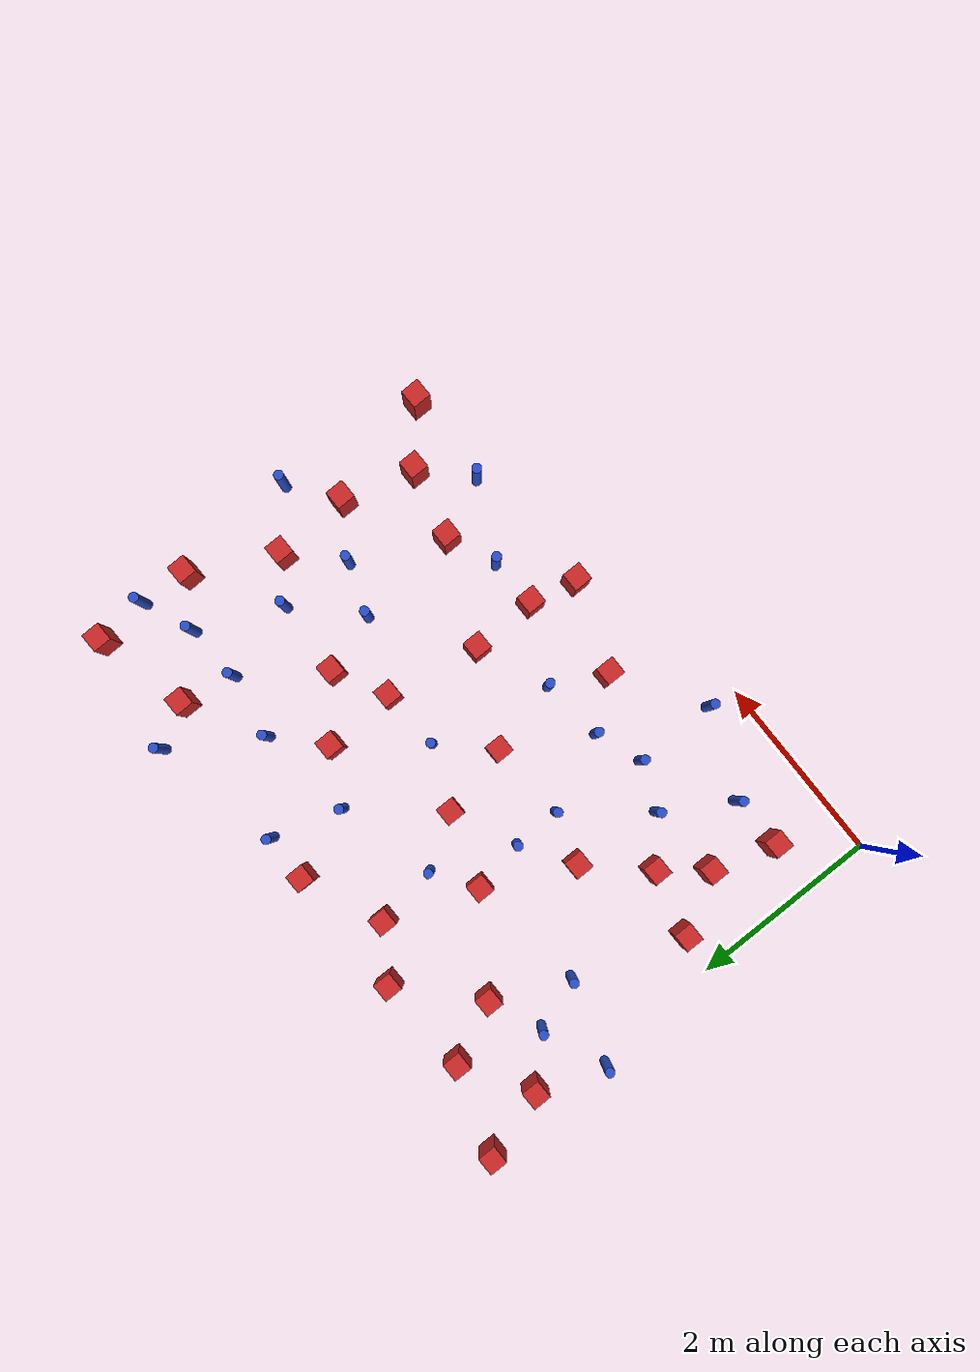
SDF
<sdf version="1.6">
 <model name="dense_24">
  <model name="square_post_obstacle5">
   <static>true</static>
   <pose>2.1114799383 3.23724180372 1.91545236811e-07 -7.35059704564e-06 1.12565212e-07 2.39332434364e-05</pose>
   <link name="link">
    <pose>0 0 0.25 0 -0 0</pose>
    <inertial>
     <mass>100</mass>
     <inertia>
      <ixx>0.166667</ixx>
      <ixy>0</ixy>
      <ixz>0</ixz>
      <iyy>0.166667</iyy>
      <iyz>0</iyz>
      <izz>0.166667</izz>
     </inertia>
    </inertial>
    <collision name="collision"><geometry><box><size>.2 .2 .5</size></box></geometry></collision>
    <visual name="visual">
     <geometry><box><size>.2 .2 .5</size></box></geometry>
     <material>
      <script><name>Gazebo/Red</name><uri>file://media/materials/scripts/gazebo.material</uri></script>
     </material>
    </visual>
   </link>
  </model>
  <model name="pole_obstacle13">
   <static>true</static>
   <pose>3.23759024392 1.45108022356 7.38925637345e-09 -8.471706928e-08 1.24976765152e-08 -1.74513093012e-07</pose>
   <link name="link">
    <pose>0 0 0.3 0 -0 0</pose>
    <inertial>
     <mass>1</mass>
     <inertia><ixx>0.145833</ixx><ixy>0</ixy><ixz>0</ixz><iyy>0.145833</iyy><iyz>0</iyz><izz>0.125</izz></inertia>
    </inertial>
    <collision name="collision">
     <geometry><cylinder><radius>0.05</radius><length>.6</length></cylinder></geometry>
    </collision>
    <visual name="visual">
     <geometry><cylinder><radius>0.05</radius><length>.6</length></cylinder></geometry>
     <material>
      <script><name>Gazebo/Blue</name><uri>file://media/materials/scripts/gazebo.material</uri></script>
     </material>
    </visual>
   </link>
  </model>
  <model name="square_post_obstacle26">
   <static>true</static>
   <pose>5.01945218155 1.30761017633 1.91545236811e-07 -7.35059704564e-06 1.12565212e-07 2.39332434364e-05</pose>
   <link name="link">
    <pose>0 0 0.25 0 -0 0</pose>
    <inertial>
     <mass>100</mass>
     <inertia>
      <ixx>0.166667</ixx>
      <ixy>0</ixy>
      <ixz>0</ixz>
      <iyy>0.166667</iyy>
      <iyz>0</iyz>
      <izz>0.166667</izz>
     </inertia>
    </inertial>
    <collision name="collision"><geometry><box><size>.2 .2 .5</size></box></geometry></collision>
    <visual name="visual">
     <geometry><box><size>.2 .2 .5</size></box></geometry>
     <material>
      <script><name>Gazebo/Red</name><uri>file://media/materials/scripts/gazebo.material</uri></script>
     </material>
    </visual>
   </link>
  </model>
  <model name="pole_obstacle21">
   <static>true</static>
   <pose>3.57852306725 3.81296826956 7.38925637345e-09 -8.47170692798e-08 1.24976764939e-08 -1.74513093025e-07</pose>
   <link name="link">
    <pose>0 0 0.3 0 -0 0</pose>
    <inertial>
     <mass>1</mass>
     <inertia><ixx>0.145833</ixx><ixy>0</ixy><ixz>0</ixz><iyy>0.145833</iyy><iyz>0</iyz><izz>0.125</izz></inertia>
    </inertial>
    <collision name="collision">
     <geometry><cylinder><radius>0.05</radius><length>.6</length></cylinder></geometry>
    </collision>
    <visual name="visual">
     <geometry><cylinder><radius>0.05</radius><length>.6</length></cylinder></geometry>
     <material>
      <script><name>Gazebo/Blue</name><uri>file://media/materials/scripts/gazebo.material</uri></script>
     </material>
    </visual>
   </link>
  </model>
  <model name="square_post_obstacle33">
   <static>true</static>
   <pose>6.36885371622 3.54152186159 1.91545236811e-07 -7.35059704564e-06 1.12565212e-07 2.39332434364e-05</pose>
   <link name="link">
    <pose>0 0 0.25 0 -0 0</pose>
    <inertial>
     <mass>100</mass>
     <inertia>
      <ixx>0.166667</ixx>
      <ixy>0</ixy>
      <ixz>0</ixz>
      <iyy>0.166667</iyy>
      <iyz>0</iyz>
      <izz>0.166667</izz>
     </inertia>
    </inertial>
    <collision name="collision"><geometry><box><size>.2 .2 .5</size></box></geometry></collision>
    <visual name="visual">
     <geometry><box><size>.2 .2 .5</size></box></geometry>
     <material>
      <script><name>Gazebo/Red</name><uri>file://media/materials/scripts/gazebo.material</uri></script>
     </material>
    </visual>
   </link>
  </model>
  <model name="pole_obstacle34">
   <static>true</static>
   <pose>4.60796828757 3.93987516932 7.38925637345e-09 -8.47170692798e-08 1.24976764937e-08 -1.74513093023e-07</pose>
   <link name="link">
    <pose>0 0 0.3 0 -0 0</pose>
    <inertial>
     <mass>1</mass>
     <inertia><ixx>0.145833</ixx><ixy>0</ixy><ixz>0</ixz><iyy>0.145833</iyy><iyz>0</iyz><izz>0.125</izz></inertia>
    </inertial>
    <collision name="collision">
     <geometry><cylinder><radius>0.05</radius><length>.6</length></cylinder></geometry>
    </collision>
    <visual name="visual">
     <geometry><cylinder><radius>0.05</radius><length>.6</length></cylinder></geometry>
     <material>
      <script><name>Gazebo/Blue</name><uri>file://media/materials/scripts/gazebo.material</uri></script>
     </material>
    </visual>
   </link>
  </model>
  <model name="pole_obstacle40">
   <static>true</static>
   <pose>5.30371421879 0.694664891359 7.38925637345e-09 -8.47170692799e-08 1.24976765038e-08 -1.74513093018e-07</pose>
   <link name="link">
    <pose>0 0 0.3 0 -0 0</pose>
    <inertial>
     <mass>1</mass>
     <inertia><ixx>0.145833</ixx><ixy>0</ixy><ixz>0</ixz><iyy>0.145833</iyy><iyz>0</iyz><izz>0.125</izz></inertia>
    </inertial>
    <collision name="collision">
     <geometry><cylinder><radius>0.05</radius><length>.6</length></cylinder></geometry>
    </collision>
    <visual name="visual">
     <geometry><cylinder><radius>0.05</radius><length>.6</length></cylinder></geometry>
     <material>
      <script><name>Gazebo/Blue</name><uri>file://media/materials/scripts/gazebo.material</uri></script>
     </material>
    </visual>
   </link>
  </model>
  <model name="square_post_obstacle41">
   <static>true</static>
   <pose>1.9316861947 4.54639131153 1.91545236811e-07 -7.35059704564e-06 1.12565212e-07 2.39332434364e-05</pose>
   <link name="link">
    <pose>0 0 0.25 0 -0 0</pose>
    <inertial>
     <mass>100</mass>
     <inertia>
      <ixx>0.166667</ixx>
      <ixy>0</ixy>
      <ixz>0</ixz>
      <iyy>0.166667</iyy>
      <iyz>0</iyz>
      <izz>0.166667</izz>
     </inertia>
    </inertial>
    <collision name="collision"><geometry><box><size>.2 .2 .5</size></box></geometry></collision>
    <visual name="visual">
     <geometry><box><size>.2 .2 .5</size></box></geometry>
     <material>
      <script><name>Gazebo/Red</name><uri>file://media/materials/scripts/gazebo.material</uri></script>
     </material>
    </visual>
   </link>
  </model>
  <model name="square_post_obstacle44">
   <static>true</static>
   <pose>3.0543779842 2.2329918 1.91545236811e-07 -7.35059704564e-06 1.12565212e-07 2.39332434364e-05</pose>
   <link name="link">
    <pose>0 0 0.25 0 -0 0</pose>
    <inertial>
     <mass>100</mass>
     <inertia>
      <ixx>0.166667</ixx>
      <ixy>0</ixy>
      <ixz>0</ixz>
      <iyy>0.166667</iyy>
      <iyz>0</iyz>
      <izz>0.166667</izz>
     </inertia>
    </inertial>
    <collision name="collision"><geometry><box><size>.2 .2 .5</size></box></geometry></collision>
    <visual name="visual">
     <geometry><box><size>.2 .2 .5</size></box></geometry>
     <material>
      <script><name>Gazebo/Red</name><uri>file://media/materials/scripts/gazebo.material</uri></script>
     </material>
    </visual>
   </link>
  </model>
  <model name="square_post_obstacle56">
   <static>true</static>
   <pose>3.97602311547 1.76277531821 1.91545236811e-07 -7.35059704564e-06 1.12565212e-07 2.39332434364e-05</pose>
   <link name="link">
    <pose>0 0 0.25 0 -0 0</pose>
    <inertial>
     <mass>100</mass>
     <inertia>
      <ixx>0.166667</ixx>
      <ixy>0</ixy>
      <ixz>0</ixz>
      <iyy>0.166667</iyy>
      <iyz>0</iyz>
      <izz>0.166667</izz>
     </inertia>
    </inertial>
    <collision name="collision"><geometry><box><size>.2 .2 .5</size></box></geometry></collision>
    <visual name="visual">
     <geometry><box><size>.2 .2 .5</size></box></geometry>
     <material>
      <script><name>Gazebo/Red</name><uri>file://media/materials/scripts/gazebo.material</uri></script>
     </material>
    </visual>
   </link>
  </model>
  <model name="square_post_obstacle58">
   <static>true</static>
   <pose>5.92137590437 2.68245180076 1.91545236811e-07 -7.35059704564e-06 1.12565212e-07 2.39332434364e-05</pose>
   <link name="link">
    <pose>0 0 0.25 0 -0 0</pose>
    <inertial>
     <mass>100</mass>
     <inertia>
      <ixx>0.166667</ixx>
      <ixy>0</ixy>
      <ixz>0</ixz>
      <iyy>0.166667</iyy>
      <iyz>0</iyz>
      <izz>0.166667</izz>
     </inertia>
    </inertial>
    <collision name="collision"><geometry><box><size>.2 .2 .5</size></box></geometry></collision>
    <visual name="visual">
     <geometry><box><size>.2 .2 .5</size></box></geometry>
     <material>
      <script><name>Gazebo/Red</name><uri>file://media/materials/scripts/gazebo.material</uri></script>
     </material>
    </visual>
   </link>
  </model>
  <model name="square_post_obstacle61">
   <static>true</static>
   <pose>5.73949888242 1.13760612837 1.91545236811e-07 -7.35059704564e-06 1.12565212e-07 2.39332434364e-05</pose>
   <link name="link">
    <pose>0 0 0.25 0 -0 0</pose>
    <inertial>
     <mass>100</mass>
     <inertia>
      <ixx>0.166667</ixx>
      <ixy>0</ixy>
      <ixz>0</ixz>
      <iyy>0.166667</iyy>
      <iyz>0</iyz>
      <izz>0.166667</izz>
     </inertia>
    </inertial>
    <collision name="collision"><geometry><box><size>.2 .2 .5</size></box></geometry></collision>
    <visual name="visual">
     <geometry><box><size>.2 .2 .5</size></box></geometry>
     <material>
      <script><name>Gazebo/Red</name><uri>file://media/materials/scripts/gazebo.material</uri></script>
     </material>
    </visual>
   </link>
  </model>
  <model name="square_post_obstacle64">
   <static>true</static>
   <pose>4.16203594431 2.74365635211 1.91545236811e-07 -7.35059704564e-06 1.12565212e-07 2.39332434364e-05</pose>
   <link name="link">
    <pose>0 0 0.25 0 -0 0</pose>
    <inertial>
     <mass>100</mass>
     <inertia>
      <ixx>0.166667</ixx>
      <ixy>0</ixy>
      <ixz>0</ixz>
      <iyy>0.166667</iyy>
      <iyz>0</iyz>
      <izz>0.166667</izz>
     </inertia>
    </inertial>
    <collision name="collision"><geometry><box><size>.2 .2 .5</size></box></geometry></collision>
    <visual name="visual">
     <geometry><box><size>.2 .2 .5</size></box></geometry>
     <material>
      <script><name>Gazebo/Red</name><uri>file://media/materials/scripts/gazebo.material</uri></script>
     </material>
    </visual>
   </link>
  </model>
  <model name="square_post_obstacle72">
   <static>true</static>
   <pose>1.19289978525 3.87084790823 1.91545236811e-07 -7.35059704564e-06 1.12565212e-07 2.39332434364e-05</pose>
   <link name="link">
    <pose>0 0 0.25 0 -0 0</pose>
    <inertial>
     <mass>100</mass>
     <inertia>
      <ixx>0.166667</ixx>
      <ixy>0</ixy>
      <ixz>0</ixz>
      <iyy>0.166667</iyy>
      <iyz>0</iyz>
      <izz>0.166667</izz>
     </inertia>
    </inertial>
    <collision name="collision"><geometry><box><size>.2 .2 .5</size></box></geometry></collision>
    <visual name="visual">
     <geometry><box><size>.2 .2 .5</size></box></geometry>
     <material>
      <script><name>Gazebo/Red</name><uri>file://media/materials/scripts/gazebo.material</uri></script>
     </material>
    </visual>
   </link>
  </model>
  <model name="pole_obstacle72">
   <static>true</static>
   <pose>5.28883919184 3.82008956437 7.38925637345e-09 -8.47170692798e-08 1.24976764937e-08 -1.74513093023e-07</pose>
   <link name="link">
    <pose>0 0 0.3 0 -0 0</pose>
    <inertial>
     <mass>1</mass>
     <inertia><ixx>0.145833</ixx><ixy>0</ixy><ixz>0</ixz><iyy>0.145833</iyy><iyz>0</iyz><izz>0.125</izz></inertia>
    </inertial>
    <collision name="collision">
     <geometry><cylinder><radius>0.05</radius><length>.6</length></cylinder></geometry>
    </collision>
    <visual name="visual">
     <geometry><cylinder><radius>0.05</radius><length>.6</length></cylinder></geometry>
     <material>
      <script><name>Gazebo/Blue</name><uri>file://media/materials/scripts/gazebo.material</uri></script>
     </material>
    </visual>
   </link>
  </model>
  <model name="pole_obstacle73">
   <static>true</static>
   <pose>2.2150391815 2.18027554898 7.38925637345e-09 -8.47170692798e-08 1.24976764939e-08 -1.74513093025e-07</pose>
   <link name="link">
    <pose>0 0 0.3 0 -0 0</pose>
    <inertial>
     <mass>1</mass>
     <inertia><ixx>0.145833</ixx><ixy>0</ixy><ixz>0</ixz><iyy>0.145833</iyy><iyz>0</iyz><izz>0.125</izz></inertia>
    </inertial>
    <collision name="collision">
     <geometry><cylinder><radius>0.05</radius><length>.6</length></cylinder></geometry>
    </collision>
    <visual name="visual">
     <geometry><cylinder><radius>0.05</radius><length>.6</length></cylinder></geometry>
     <material>
      <script><name>Gazebo/Blue</name><uri>file://media/materials/scripts/gazebo.material</uri></script>
     </material>
    </visual>
   </link>
  </model>
  <model name="pole_obstacle77">
   <static>true</static>
   <pose>5.5066604686 2.98591496148 7.38925637345e-09 -8.47170692798e-08 1.24976764937e-08 -1.74513093023e-07</pose>
   <link name="link">
    <pose>0 0 0.3 0 -0 0</pose>
    <inertial>
     <mass>1</mass>
     <inertia><ixx>0.145833</ixx><ixy>0</ixy><ixz>0</ixz><iyy>0.145833</iyy><iyz>0</iyz><izz>0.125</izz></inertia>
    </inertial>
    <collision name="collision">
     <geometry><cylinder><radius>0.05</radius><length>.6</length></cylinder></geometry>
    </collision>
    <visual name="visual">
     <geometry><cylinder><radius>0.05</radius><length>.6</length></cylinder></geometry>
     <material>
      <script><name>Gazebo/Blue</name><uri>file://media/materials/scripts/gazebo.material</uri></script>
     </material>
    </visual>
   </link>
  </model>
  <model name="pole_obstacle84">
   <static>true</static>
   <pose>5.8953983592 3.85170807815 7.38925637345e-09 -8.47170692798e-08 1.24976764937e-08 -1.74513093023e-07</pose>
   <link name="link">
    <pose>0 0 0.3 0 -0 0</pose>
    <inertial>
     <mass>1</mass>
     <inertia><ixx>0.145833</ixx><ixy>0</ixy><ixz>0</ixz><iyy>0.145833</iyy><iyz>0</iyz><izz>0.125</izz></inertia>
    </inertial>
    <collision name="collision">
     <geometry><cylinder><radius>0.05</radius><length>.6</length></cylinder></geometry>
    </collision>
    <visual name="visual">
     <geometry><cylinder><radius>0.05</radius><length>.6</length></cylinder></geometry>
     <material>
      <script><name>Gazebo/Blue</name><uri>file://media/materials/scripts/gazebo.material</uri></script>
     </material>
    </visual>
   </link>
  </model>
  <model name="pole_obstacle98">
   <static>true</static>
   <pose>3.79694006744 4.54510872652 7.38925637345e-09 -8.47170692798e-08 1.24976765033e-08 -1.74513093019e-07</pose>
   <link name="link">
    <pose>0 0 0.3 0 -0 0</pose>
    <inertial>
     <mass>1</mass>
     <inertia><ixx>0.145833</ixx><ixy>0</ixy><ixz>0</ixz><iyy>0.145833</iyy><iyz>0</iyz><izz>0.125</izz></inertia>
    </inertial>
    <collision name="collision">
     <geometry><cylinder><radius>0.05</radius><length>.6</length></cylinder></geometry>
    </collision>
    <visual name="visual">
     <geometry><cylinder><radius>0.05</radius><length>.6</length></cylinder></geometry>
     <material>
      <script><name>Gazebo/Blue</name><uri>file://media/materials/scripts/gazebo.material</uri></script>
     </material>
    </visual>
   </link>
  </model>
  <model name="square_post_obstacle91">
   <static>true</static>
   <pose>3.99244737672 1.07233325912 1.91545236811e-07 -7.35059704564e-06 1.12565212e-07 2.39332434364e-05</pose>
   <link name="link">
    <pose>0 0 0.25 0 -0 0</pose>
    <inertial>
     <mass>100</mass>
     <inertia>
      <ixx>0.166667</ixx>
      <ixy>0</ixy>
      <ixz>0</ixz>
      <iyy>0.166667</iyy>
      <iyz>0</iyz>
      <izz>0.166667</izz>
     </inertia>
    </inertial>
    <collision name="collision"><geometry><box><size>.2 .2 .5</size></box></geometry></collision>
    <visual name="visual">
     <geometry><box><size>.2 .2 .5</size></box></geometry>
     <material>
      <script><name>Gazebo/Red</name><uri>file://media/materials/scripts/gazebo.material</uri></script>
     </material>
    </visual>
   </link>
  </model>
  <model name="pole_obstacle106">
   <static>true</static>
   <pose>4.51753531283 1.08375698569 7.38925637345e-09 -8.471706928e-08 1.24976765134e-08 -1.74513093015e-07</pose>
   <link name="link">
    <pose>0 0 0.3 0 -0 0</pose>
    <inertial>
     <mass>1</mass>
     <inertia><ixx>0.145833</ixx><ixy>0</ixy><ixz>0</ixz><iyy>0.145833</iyy><iyz>0</iyz><izz>0.125</izz></inertia>
    </inertial>
    <collision name="collision">
     <geometry><cylinder><radius>0.05</radius><length>.6</length></cylinder></geometry>
    </collision>
    <visual name="visual">
     <geometry><cylinder><radius>0.05</radius><length>.6</length></cylinder></geometry>
     <material>
      <script><name>Gazebo/Blue</name><uri>file://media/materials/scripts/gazebo.material</uri></script>
     </material>
    </visual>
   </link>
  </model>
  <model name="pole_obstacle107">
   <static>true</static>
   <pose>2.57090489926 1.3809511709 7.38925637345e-09 -8.471706928e-08 1.24976765152e-08 -1.74513093012e-07</pose>
   <link name="link">
    <pose>0 0 0.3 0 -0 0</pose>
    <inertial>
     <mass>1</mass>
     <inertia><ixx>0.145833</ixx><ixy>0</ixy><ixz>0</ixz><iyy>0.145833</iyy><iyz>0</iyz><izz>0.125</izz></inertia>
    </inertial>
    <collision name="collision">
     <geometry><cylinder><radius>0.05</radius><length>.6</length></cylinder></geometry>
    </collision>
    <visual name="visual">
     <geometry><cylinder><radius>0.05</radius><length>.6</length></cylinder></geometry>
     <material>
      <script><name>Gazebo/Blue</name><uri>file://media/materials/scripts/gazebo.material</uri></script>
     </material>
    </visual>
   </link>
  </model>
  <model name="pole_obstacle108">
   <static>true</static>
   <pose>0.626406512663 3.64642340075 7.38925637345e-09 -8.47170692799e-08 1.2497676509e-08 -1.74513093016e-07</pose>
   <link name="link">
    <pose>0 0 0.3 0 -0 0</pose>
    <inertial>
     <mass>1</mass>
     <inertia><ixx>0.145833</ixx><ixy>0</ixy><ixz>0</ixz><iyy>0.145833</iyy><iyz>0</iyz><izz>0.125</izz></inertia>
    </inertial>
    <collision name="collision">
     <geometry><cylinder><radius>0.05</radius><length>.6</length></cylinder></geometry>
    </collision>
    <visual name="visual">
     <geometry><cylinder><radius>0.05</radius><length>.6</length></cylinder></geometry>
     <material>
      <script><name>Gazebo/Blue</name><uri>file://media/materials/scripts/gazebo.material</uri></script>
     </material>
    </visual>
   </link>
  </model>
  <model name="pole_obstacle115">
   <static>true</static>
   <pose>2.07404274981 0.334553600403 7.38925637345e-09 -8.471706928e-08 1.24976765172e-08 -1.74513093013e-07</pose>
   <link name="link">
    <pose>0 0 0.3 0 -0 0</pose>
    <inertial>
     <mass>1</mass>
     <inertia><ixx>0.145833</ixx><ixy>0</ixy><ixz>0</ixz><iyy>0.145833</iyy><iyz>0</iyz><izz>0.125</izz></inertia>
    </inertial>
    <collision name="collision">
     <geometry><cylinder><radius>0.05</radius><length>.6</length></cylinder></geometry>
    </collision>
    <visual name="visual">
     <geometry><cylinder><radius>0.05</radius><length>.6</length></cylinder></geometry>
     <material>
      <script><name>Gazebo/Blue</name><uri>file://media/materials/scripts/gazebo.material</uri></script>
     </material>
    </visual>
   </link>
  </model>
  <model name="pole_obstacle117">
   <static>true</static>
   <pose>0.829466836973 3.10124996302 7.38925637345e-09 -8.47170692799e-08 1.2497676509e-08 -1.74513093016e-07</pose>
   <link name="link">
    <pose>0 0 0.3 0 -0 0</pose>
    <inertial>
     <mass>1</mass>
     <inertia><ixx>0.145833</ixx><ixy>0</ixy><ixz>0</ixz><iyy>0.145833</iyy><iyz>0</iyz><izz>0.125</izz></inertia>
    </inertial>
    <collision name="collision">
     <geometry><cylinder><radius>0.05</radius><length>.6</length></cylinder></geometry>
    </collision>
    <visual name="visual">
     <geometry><cylinder><radius>0.05</radius><length>.6</length></cylinder></geometry>
     <material>
      <script><name>Gazebo/Blue</name><uri>file://media/materials/scripts/gazebo.material</uri></script>
     </material>
    </visual>
   </link>
  </model>
  <model name="square_post_obstacle106">
   <static>true</static>
   <pose>-0.0300472141594 4.81381780339 1.91545236811e-07 -7.35059704564e-06 1.12565212e-07 2.39332434364e-05</pose>
   <link name="link">
    <pose>0 0 0.25 0 -0 0</pose>
    <inertial>
     <mass>100</mass>
     <inertia>
      <ixx>0.166667</ixx>
      <ixy>0</ixy>
      <ixz>0</ixz>
      <iyy>0.166667</iyy>
      <iyz>0</iyz>
      <izz>0.166667</izz>
     </inertia>
    </inertial>
    <collision name="collision"><geometry><box><size>.2 .2 .5</size></box></geometry></collision>
    <visual name="visual">
     <geometry><box><size>.2 .2 .5</size></box></geometry>
     <material>
      <script><name>Gazebo/Red</name><uri>file://media/materials/scripts/gazebo.material</uri></script>
     </material>
    </visual>
   </link>
  </model>
  <model name="pole_obstacle119">
   <static>true</static>
   <pose>6.4260833534 4.06566936149 7.38925637345e-09 -8.47170692796e-08 1.24976764786e-08 -1.74513093032e-07</pose>
   <link name="link">
    <pose>0 0 0.3 0 -0 0</pose>
    <inertial>
     <mass>1</mass>
     <inertia><ixx>0.145833</ixx><ixy>0</ixy><ixz>0</ixz><iyy>0.145833</iyy><iyz>0</iyz><izz>0.125</izz></inertia>
    </inertial>
    <collision name="collision">
     <geometry><cylinder><radius>0.05</radius><length>.6</length></cylinder></geometry>
    </collision>
    <visual name="visual">
     <geometry><cylinder><radius>0.05</radius><length>.6</length></cylinder></geometry>
     <material>
      <script><name>Gazebo/Blue</name><uri>file://media/materials/scripts/gazebo.material</uri></script>
     </material>
    </visual>
   </link>
  </model>
  <model name="square_post_obstacle108">
   <static>true</static>
   <pose>1.68257461443 2.34215414196 1.91545236811e-07 -7.35059704564e-06 1.12565212e-07 2.39332434364e-05</pose>
   <link name="link">
    <pose>0 0 0.25 0 -0 0</pose>
    <inertial>
     <mass>100</mass>
     <inertia>
      <ixx>0.166667</ixx>
      <ixy>0</ixy>
      <ixz>0</ixz>
      <iyy>0.166667</iyy>
      <iyz>0</iyz>
      <izz>0.166667</izz>
     </inertia>
    </inertial>
    <collision name="collision"><geometry><box><size>.2 .2 .5</size></box></geometry></collision>
    <visual name="visual">
     <geometry><box><size>.2 .2 .5</size></box></geometry>
     <material>
      <script><name>Gazebo/Red</name><uri>file://media/materials/scripts/gazebo.material</uri></script>
     </material>
    </visual>
   </link>
  </model>
  <model name="pole_obstacle125">
   <static>true</static>
   <pose>3.51871331285 2.71443841695 7.38925637345e-09 -8.47170692798e-08 1.24976764939e-08 -1.74513093025e-07</pose>
   <link name="link">
    <pose>0 0 0.3 0 -0 0</pose>
    <inertial>
     <mass>1</mass>
     <inertia><ixx>0.145833</ixx><ixy>0</ixy><ixz>0</ixz><iyy>0.145833</iyy><iyz>0</iyz><izz>0.125</izz></inertia>
    </inertial>
    <collision name="collision">
     <geometry><cylinder><radius>0.05</radius><length>.6</length></cylinder></geometry>
    </collision>
    <visual name="visual">
     <geometry><cylinder><radius>0.05</radius><length>.6</length></cylinder></geometry>
     <material>
      <script><name>Gazebo/Blue</name><uri>file://media/materials/scripts/gazebo.material</uri></script>
     </material>
    </visual>
   </link>
  </model>
  <model name="square_post_obstacle115">
   <static>true</static>
   <pose>0.455635321716 1.95280933505 1.91545236811e-07 -7.35059704564e-06 1.12565212e-07 2.39332434364e-05</pose>
   <link name="link">
    <pose>0 0 0.25 0 -0 0</pose>
    <inertial>
     <mass>100</mass>
     <inertia>
      <ixx>0.166667</ixx>
      <ixy>0</ixy>
      <ixz>0</ixz>
      <iyy>0.166667</iyy>
      <iyz>0</iyz>
      <izz>0.166667</izz>
     </inertia>
    </inertial>
    <collision name="collision"><geometry><box><size>.2 .2 .5</size></box></geometry></collision>
    <visual name="visual">
     <geometry><box><size>.2 .2 .5</size></box></geometry>
     <material>
      <script><name>Gazebo/Red</name><uri>file://media/materials/scripts/gazebo.material</uri></script>
     </material>
    </visual>
   </link>
  </model>
  <model name="square_post_obstacle117">
   <static>true</static>
   <pose>1.15084973635 1.78178041295 1.91545236811e-07 -7.35059704564e-06 1.12565212e-07 2.39332434364e-05</pose>
   <link name="link">
    <pose>0 0 0.25 0 -0 0</pose>
    <inertial>
     <mass>100</mass>
     <inertia>
      <ixx>0.166667</ixx>
      <ixy>0</ixy>
      <ixz>0</ixz>
      <iyy>0.166667</iyy>
      <iyz>0</iyz>
      <izz>0.166667</izz>
     </inertia>
    </inertial>
    <collision name="collision"><geometry><box><size>.2 .2 .5</size></box></geometry></collision>
    <visual name="visual">
     <geometry><box><size>.2 .2 .5</size></box></geometry>
     <material>
      <script><name>Gazebo/Red</name><uri>file://media/materials/scripts/gazebo.material</uri></script>
     </material>
    </visual>
   </link>
  </model>
  <model name="square_post_obstacle119">
   <static>true</static>
   <pose>6.26309046809 0.683885494542 1.91545236811e-07 -7.35059704564e-06 1.12565212e-07 2.39332434364e-05</pose>
   <link name="link">
    <pose>0 0 0.25 0 -0 0</pose>
    <inertial>
     <mass>100</mass>
     <inertia>
      <ixx>0.166667</ixx>
      <ixy>0</ixy>
      <ixz>0</ixz>
      <iyy>0.166667</iyy>
      <iyz>0</iyz>
      <izz>0.166667</izz>
     </inertia>
    </inertial>
    <collision name="collision"><geometry><box><size>.2 .2 .5</size></box></geometry></collision>
    <visual name="visual">
     <geometry><box><size>.2 .2 .5</size></box></geometry>
     <material>
      <script><name>Gazebo/Red</name><uri>file://media/materials/scripts/gazebo.material</uri></script>
     </material>
    </visual>
   </link>
  </model>
  <model name="square_post_obstacle138">
   <static>true</static>
   <pose>5.38997732978 4.37417145799 1.91545236811e-07 -7.35059704564e-06 1.12565212e-07 2.39332434364e-05</pose>
   <link name="link">
    <pose>0 0 0.25 0 -0 0</pose>
    <inertial>
     <mass>100</mass>
     <inertia>
      <ixx>0.166667</ixx>
      <ixy>0</ixy>
      <ixz>0</ixz>
      <iyy>0.166667</iyy>
      <iyz>0</iyz>
      <izz>0.166667</izz>
     </inertia>
    </inertial>
    <collision name="collision"><geometry><box><size>.2 .2 .5</size></box></geometry></collision>
    <visual name="visual">
     <geometry><box><size>.2 .2 .5</size></box></geometry>
     <material>
      <script><name>Gazebo/Red</name><uri>file://media/materials/scripts/gazebo.material</uri></script>
     </material>
    </visual>
   </link>
  </model>
  <model name="pole_obstacle150">
   <static>true</static>
   <pose>5.17111351861 4.83644780608 7.38925637345e-09 -8.47170692796e-08 1.24976764786e-08 -1.74513093032e-07</pose>
   <link name="link">
    <pose>0 0 0.3 0 -0 0</pose>
    <inertial>
     <mass>1</mass>
     <inertia><ixx>0.145833</ixx><ixy>0</ixy><ixz>0</ixz><iyy>0.145833</iyy><iyz>0</iyz><izz>0.125</izz></inertia>
    </inertial>
    <collision name="collision">
     <geometry><cylinder><radius>0.05</radius><length>.6</length></cylinder></geometry>
    </collision>
    <visual name="visual">
     <geometry><cylinder><radius>0.05</radius><length>.6</length></cylinder></geometry>
     <material>
      <script><name>Gazebo/Blue</name><uri>file://media/materials/scripts/gazebo.material</uri></script>
     </material>
    </visual>
   </link>
  </model>
  <model name="square_post_obstacle141">
   <static>true</static>
   <pose>2.96178868603 0.909391289488 1.91545236811e-07 -7.35059704564e-06 1.12565212e-07 2.39332434364e-05</pose>
   <link name="link">
    <pose>0 0 0.25 0 -0 0</pose>
    <inertial>
     <mass>100</mass>
     <inertia>
      <ixx>0.166667</ixx>
      <ixy>0</ixy>
      <ixz>0</ixz>
      <iyy>0.166667</iyy>
      <iyz>0</iyz>
      <izz>0.166667</izz>
     </inertia>
    </inertial>
    <collision name="collision"><geometry><box><size>.2 .2 .5</size></box></geometry></collision>
    <visual name="visual">
     <geometry><box><size>.2 .2 .5</size></box></geometry>
     <material>
      <script><name>Gazebo/Red</name><uri>file://media/materials/scripts/gazebo.material</uri></script>
     </material>
    </visual>
   </link>
  </model>
  <model name="pole_obstacle158">
   <static>true</static>
   <pose>6.46131106012 2.22980184369 7.38925637345e-09 -8.47170692798e-08 1.24976764937e-08 -1.74513093023e-07</pose>
   <link name="link">
    <pose>0 0 0.3 0 -0 0</pose>
    <inertial>
     <mass>1</mass>
     <inertia><ixx>0.145833</ixx><ixy>0</ixy><ixz>0</ixz><iyy>0.145833</iyy><iyz>0</iyz><izz>0.125</izz></inertia>
    </inertial>
    <collision name="collision">
     <geometry><cylinder><radius>0.05</radius><length>.6</length></cylinder></geometry>
    </collision>
    <visual name="visual">
     <geometry><cylinder><radius>0.05</radius><length>.6</length></cylinder></geometry>
     <material>
      <script><name>Gazebo/Blue</name><uri>file://media/materials/scripts/gazebo.material</uri></script>
     </material>
    </visual>
   </link>
  </model>
  <model name="square_post_obstacle152">
   <static>true</static>
   <pose>2.88037979498 2.98938264803 1.91545236811e-07 -7.35059704564e-06 1.12565212e-07 2.39332434364e-05</pose>
   <link name="link">
    <pose>0 0 0.25 0 -0 0</pose>
    <inertial>
     <mass>100</mass>
     <inertia>
      <ixx>0.166667</ixx>
      <ixy>0</ixy>
      <ixz>0</ixz>
      <iyy>0.166667</iyy>
      <iyz>0</iyz>
      <izz>0.166667</izz>
     </inertia>
    </inertial>
    <collision name="collision"><geometry><box><size>.2 .2 .5</size></box></geometry></collision>
    <visual name="visual">
     <geometry><box><size>.2 .2 .5</size></box></geometry>
     <material>
      <script><name>Gazebo/Red</name><uri>file://media/materials/scripts/gazebo.material</uri></script>
     </material>
    </visual>
   </link>
  </model>
  <model name="pole_obstacle160">
   <static>true</static>
   <pose>1.1661735004 0.712990918538 7.38925637345e-09 -8.47170692799e-08 1.24976765075e-08 -1.74513093017e-07</pose>
   <link name="link">
    <pose>0 0 0.3 0 -0 0</pose>
    <inertial>
     <mass>1</mass>
     <inertia><ixx>0.145833</ixx><ixy>0</ixy><ixz>0</ixz><iyy>0.145833</iyy><iyz>0</iyz><izz>0.125</izz></inertia>
    </inertial>
    <collision name="collision">
     <geometry><cylinder><radius>0.05</radius><length>.6</length></cylinder></geometry>
    </collision>
    <visual name="visual">
     <geometry><cylinder><radius>0.05</radius><length>.6</length></cylinder></geometry>
     <material>
      <script><name>Gazebo/Blue</name><uri>file://media/materials/scripts/gazebo.material</uri></script>
     </material>
    </visual>
   </link>
  </model>
  <model name="pole_obstacle161">
   <static>true</static>
   <pose>2.54736153965 3.53073792887 7.38925637345e-09 -8.47170692798e-08 1.24976764939e-08 -1.74513093025e-07</pose>
   <link name="link">
    <pose>0 0 0.3 0 -0 0</pose>
    <inertial>
     <mass>1</mass>
     <inertia><ixx>0.145833</ixx><ixy>0</ixy><ixz>0</ixz><iyy>0.145833</iyy><iyz>0</iyz><izz>0.125</izz></inertia>
    </inertial>
    <collision name="collision">
     <geometry><cylinder><radius>0.05</radius><length>.6</length></cylinder></geometry>
    </collision>
    <visual name="visual">
     <geometry><cylinder><radius>0.05</radius><length>.6</length></cylinder></geometry>
     <material>
      <script><name>Gazebo/Blue</name><uri>file://media/materials/scripts/gazebo.material</uri></script>
     </material>
    </visual>
   </link>
  </model>
  <model name="square_post_obstacle154">
   <static>true</static>
   <pose>4.13322176871 3.50057650504 1.91545236811e-07 -7.35059704564e-06 1.12565212e-07 2.39332434364e-05</pose>
   <link name="link">
    <pose>0 0 0.25 0 -0 0</pose>
    <inertial>
     <mass>100</mass>
     <inertia>
      <ixx>0.166667</ixx>
      <ixy>0</ixy>
      <ixz>0</ixz>
      <iyy>0.166667</iyy>
      <iyz>0</iyz>
      <izz>0.166667</izz>
     </inertia>
    </inertial>
    <collision name="collision"><geometry><box><size>.2 .2 .5</size></box></geometry></collision>
    <visual name="visual">
     <geometry><box><size>.2 .2 .5</size></box></geometry>
     <material>
      <script><name>Gazebo/Red</name><uri>file://media/materials/scripts/gazebo.material</uri></script>
     </material>
    </visual>
   </link>
  </model>
  <model name="square_post_obstacle157">
   <static>true</static>
   <pose>0.609343886551 0.694963784463 1.91545236811e-07 -7.35059704564e-06 1.12565212e-07 2.39332434364e-05</pose>
   <link name="link">
    <pose>0 0 0.25 0 -0 0</pose>
    <inertial>
     <mass>100</mass>
     <inertia>
      <ixx>0.166667</ixx>
      <ixy>0</ixy>
      <ixz>0</ixz>
      <iyy>0.166667</iyy>
      <iyz>0</iyz>
      <izz>0.166667</izz>
     </inertia>
    </inertial>
    <collision name="collision"><geometry><box><size>.2 .2 .5</size></box></geometry></collision>
    <visual name="visual">
     <geometry><box><size>.2 .2 .5</size></box></geometry>
     <material>
      <script><name>Gazebo/Red</name><uri>file://media/materials/scripts/gazebo.material</uri></script>
     </material>
    </visual>
   </link>
  </model>
  <model name="square_post_obstacle159">
   <static>true</static>
   <pose>3.88069820759 0.583247028452 1.91545236811e-07 -7.35059704564e-06 1.12565212e-07 2.39332434364e-05</pose>
   <link name="link">
    <pose>0 0 0.25 0 -0 0</pose>
    <inertial>
     <mass>100</mass>
     <inertia>
      <ixx>0.166667</ixx>
      <ixy>0</ixy>
      <ixz>0</ixz>
      <iyy>0.166667</iyy>
      <iyz>0</iyz>
      <izz>0.166667</izz>
     </inertia>
    </inertial>
    <collision name="collision"><geometry><box><size>.2 .2 .5</size></box></geometry></collision>
    <visual name="visual">
     <geometry><box><size>.2 .2 .5</size></box></geometry>
     <material>
      <script><name>Gazebo/Red</name><uri>file://media/materials/scripts/gazebo.material</uri></script>
     </material>
    </visual>
   </link>
  </model>
  <model name="pole_obstacle171">
   <static>true</static>
   <pose>1.58293455189 1.40165752624 7.38925637345e-09 -8.471706928e-08 1.24976765079e-08 -1.74513093017e-07</pose>
   <link name="link">
    <pose>0 0 0.3 0 -0 0</pose>
    <inertial>
     <mass>1</mass>
     <inertia><ixx>0.145833</ixx><ixy>0</ixy><ixz>0</ixz><iyy>0.145833</iyy><iyz>0</iyz><izz>0.125</izz></inertia>
    </inertial>
    <collision name="collision">
     <geometry><cylinder><radius>0.05</radius><length>.6</length></cylinder></geometry>
    </collision>
    <visual name="visual">
     <geometry><cylinder><radius>0.05</radius><length>.6</length></cylinder></geometry>
     <material>
      <script><name>Gazebo/Blue</name><uri>file://media/materials/scripts/gazebo.material</uri></script>
     </material>
    </visual>
   </link>
  </model>
  <model name="square_post_obstacle177">
   <static>true</static>
   <pose>5.96098492398 1.87808114242 1.91545236811e-07 -7.35059704564e-06 1.12565212e-07 2.39332434364e-05</pose>
   <link name="link">
    <pose>0 0 0.25 0 -0 0</pose>
    <inertial>
     <mass>100</mass>
     <inertia>
      <ixx>0.166667</ixx>
      <ixy>0</ixy>
      <ixz>0</ixz>
      <iyy>0.166667</iyy>
      <iyz>0</iyz>
      <izz>0.166667</izz>
     </inertia>
    </inertial>
    <collision name="collision"><geometry><box><size>.2 .2 .5</size></box></geometry></collision>
    <visual name="visual">
     <geometry><box><size>.2 .2 .5</size></box></geometry>
     <material>
      <script><name>Gazebo/Red</name><uri>file://media/materials/scripts/gazebo.material</uri></script>
     </material>
    </visual>
   </link>
  </model>
  <model name="square_post_obstacle181">
   <static>true</static>
   <pose>2.45645565359 4.18837654641 1.91545236811e-07 -7.35059704564e-06 1.12565212e-07 2.39332434364e-05</pose>
   <link name="link">
    <pose>0 0 0.25 0 -0 0</pose>
    <inertial>
     <mass>100</mass>
     <inertia>
      <ixx>0.166667</ixx>
      <ixy>0</ixy>
      <ixz>0</ixz>
      <iyy>0.166667</iyy>
      <iyz>0</iyz>
      <izz>0.166667</izz>
     </inertia>
    </inertial>
    <collision name="collision"><geometry><box><size>.2 .2 .5</size></box></geometry></collision>
    <visual name="visual">
     <geometry><box><size>.2 .2 .5</size></box></geometry>
     <material>
      <script><name>Gazebo/Red</name><uri>file://media/materials/scripts/gazebo.material</uri></script>
     </material>
    </visual>
   </link>
  </model>
  <model name="square_post_obstacle184">
   <static>true</static>
   <pose>0.804920762274 1.35164518247 1.91545236811e-07 -7.35059704564e-06 1.12565212e-07 2.39332434364e-05</pose>
   <link name="link">
    <pose>0 0 0.25 0 -0 0</pose>
    <inertial>
     <mass>100</mass>
     <inertia>
      <ixx>0.166667</ixx>
      <ixy>0</ixy>
      <ixz>0</ixz>
      <iyy>0.166667</iyy>
      <iyz>0</iyz>
      <izz>0.166667</izz>
     </inertia>
    </inertial>
    <collision name="collision"><geometry><box><size>.2 .2 .5</size></box></geometry></collision>
    <visual name="visual">
     <geometry><box><size>.2 .2 .5</size></box></geometry>
     <material>
      <script><name>Gazebo/Red</name><uri>file://media/materials/scripts/gazebo.material</uri></script>
     </material>
    </visual>
   </link>
  </model>
  <model name="pole_obstacle190">
   <static>true</static>
   <pose>-0.0604125966969 3.37651074943 7.38925637345e-09 -8.47170692793e-08 1.24976764354e-08 -1.74513093044e-07</pose>
   <link name="link">
    <pose>0 0 0.3 0 -0 0</pose>
    <inertial>
     <mass>1</mass>
     <inertia><ixx>0.145833</ixx><ixy>0</ixy><ixz>0</ixz><iyy>0.145833</iyy><iyz>0</iyz><izz>0.125</izz></inertia>
    </inertial>
    <collision name="collision">
     <geometry><cylinder><radius>0.05</radius><length>.6</length></cylinder></geometry>
    </collision>
    <visual name="visual">
     <geometry><cylinder><radius>0.05</radius><length>.6</length></cylinder></geometry>
     <material>
      <script><name>Gazebo/Blue</name><uri>file://media/materials/scripts/gazebo.material</uri></script>
     </material>
    </visual>
   </link>
  </model>
  <model name="pole_obstacle193">
   <static>true</static>
   <pose>5.44827505243 2.21811820803 7.38925637345e-09 -8.47170692798e-08 1.24976764937e-08 -1.74513093023e-07</pose>
   <link name="link">
    <pose>0 0 0.3 0 -0 0</pose>
    <inertial>
     <mass>1</mass>
     <inertia><ixx>0.145833</ixx><ixy>0</ixy><ixz>0</ixz><iyy>0.145833</iyy><iyz>0</iyz><izz>0.125</izz></inertia>
    </inertial>
    <collision name="collision">
     <geometry><cylinder><radius>0.05</radius><length>.6</length></cylinder></geometry>
    </collision>
    <visual name="visual">
     <geometry><cylinder><radius>0.05</radius><length>.6</length></cylinder></geometry>
     <material>
      <script><name>Gazebo/Blue</name><uri>file://media/materials/scripts/gazebo.material</uri></script>
     </material>
    </visual>
   </link>
  </model>
  <model name="pole_obstacle205">
   <static>true</static>
   <pose>4.91408374949 2.41124155223 7.38925637345e-09 -8.47170692798e-08 1.24976764937e-08 -1.74513093023e-07</pose>
   <link name="link">
    <pose>0 0 0.3 0 -0 0</pose>
    <inertial>
     <mass>1</mass>
     <inertia><ixx>0.145833</ixx><ixy>0</ixy><ixz>0</ixz><iyy>0.145833</iyy><iyz>0</iyz><izz>0.125</izz></inertia>
    </inertial>
    <collision name="collision">
     <geometry><cylinder><radius>0.05</radius><length>.6</length></cylinder></geometry>
    </collision>
    <visual name="visual">
     <geometry><cylinder><radius>0.05</radius><length>.6</length></cylinder></geometry>
     <material>
      <script><name>Gazebo/Blue</name><uri>file://media/materials/scripts/gazebo.material</uri></script>
     </material>
    </visual>
   </link>
  </model>
  <model name="pole_obstacle208">
   <static>true</static>
   <pose>2.20457357284 2.68653578301 7.38925637345e-09 -8.47170692798e-08 1.24976764939e-08 -1.74513093025e-07</pose>
   <link name="link">
    <pose>0 0 0.3 0 -0 0</pose>
    <inertial>
     <mass>1</mass>
     <inertia><ixx>0.145833</ixx><ixy>0</ixy><ixz>0</ixz><iyy>0.145833</iyy><iyz>0</iyz><izz>0.125</izz></inertia>
    </inertial>
    <collision name="collision">
     <geometry><cylinder><radius>0.05</radius><length>.6</length></cylinder></geometry>
    </collision>
    <visual name="visual">
     <geometry><cylinder><radius>0.05</radius><length>.6</length></cylinder></geometry>
     <material>
      <script><name>Gazebo/Blue</name><uri>file://media/materials/scripts/gazebo.material</uri></script>
     </material>
    </visual>
   </link>
  </model>
  <model name="pole_obstacle210">
   <static>true</static>
   <pose>2.07956312528 1.20158763491 7.38925637345e-09 -8.471706928e-08 1.24976765152e-08 -1.74513093012e-07</pose>
   <link name="link">
    <pose>0 0 0.3 0 -0 0</pose>
    <inertial>
     <mass>1</mass>
     <inertia><ixx>0.145833</ixx><ixy>0</ixy><ixz>0</ixz><iyy>0.145833</iyy><iyz>0</iyz><izz>0.125</izz></inertia>
    </inertial>
    <collision name="collision">
     <geometry><cylinder><radius>0.05</radius><length>.6</length></cylinder></geometry>
    </collision>
    <visual name="visual">
     <geometry><cylinder><radius>0.05</radius><length>.6</length></cylinder></geometry>
     <material>
      <script><name>Gazebo/Blue</name><uri>file://media/materials/scripts/gazebo.material</uri></script>
     </material>
    </visual>
   </link>
  </model>
  <model name="square_post_obstacle204">
   <static>true</static>
   <pose>4.70128881635 3.02647997451 1.91545236811e-07 -7.35059704564e-06 1.12565212e-07 2.39332434364e-05</pose>
   <link name="link">
    <pose>0 0 0.25 0 -0 0</pose>
    <inertial>
     <mass>100</mass>
     <inertia>
      <ixx>0.166667</ixx>
      <ixy>0</ixy>
      <ixz>0</ixz>
      <iyy>0.166667</iyy>
      <iyz>0</iyz>
      <izz>0.166667</izz>
     </inertia>
    </inertial>
    <collision name="collision"><geometry><box><size>.2 .2 .5</size></box></geometry></collision>
    <visual name="visual">
     <geometry><box><size>.2 .2 .5</size></box></geometry>
     <material>
      <script><name>Gazebo/Red</name><uri>file://media/materials/scripts/gazebo.material</uri></script>
     </material>
    </visual>
   </link>
  </model>
  <model name="square_post_obstacle205">
   <static>true</static>
   <pose>3.29620884815 4.54453806293 1.91545236811e-07 -7.35059704564e-06 1.12565212e-07 2.39332434364e-05</pose>
   <link name="link">
    <pose>0 0 0.25 0 -0 0</pose>
    <inertial>
     <mass>100</mass>
     <inertia>
      <ixx>0.166667</ixx>
      <ixy>0</ixy>
      <ixz>0</ixz>
      <iyy>0.166667</iyy>
      <iyz>0</iyz>
      <izz>0.166667</izz>
     </inertia>
    </inertial>
    <collision name="collision"><geometry><box><size>.2 .2 .5</size></box></geometry></collision>
    <visual name="visual">
     <geometry><box><size>.2 .2 .5</size></box></geometry>
     <material>
      <script><name>Gazebo/Red</name><uri>file://media/materials/scripts/gazebo.material</uri></script>
     </material>
    </visual>
   </link>
  </model>
  <model name="square_post_obstacle212">
   <static>true</static>
   <pose>0.198442964805 4.08173998808 1.91545236811e-07 -7.35059704564e-06 1.12565212e-07 2.39332434364e-05</pose>
   <link name="link">
    <pose>0 0 0.25 0 -0 0</pose>
    <inertial>
     <mass>100</mass>
     <inertia>
      <ixx>0.166667</ixx>
      <ixy>0</ixy>
      <ixz>0</ixz>
      <iyy>0.166667</iyy>
      <iyz>0</iyz>
      <izz>0.166667</izz>
     </inertia>
    </inertial>
    <collision name="collision"><geometry><box><size>.2 .2 .5</size></box></geometry></collision>
    <visual name="visual">
     <geometry><box><size>.2 .2 .5</size></box></geometry>
     <material>
      <script><name>Gazebo/Red</name><uri>file://media/materials/scripts/gazebo.material</uri></script>
     </material>
    </visual>
   </link>
  </model>
  <model name="square_post_obstacle216">
   <static>true</static>
   <pose>0.901522964805 4.50817998808 1.91545236811e-07 -7.35059704564e-06 1.12565212e-07 2.39332434364e-05</pose>
   <link name="link">
    <pose>0 0 0.25 0 -0 0</pose>
    <inertial>
     <mass>100</mass>
     <inertia>
      <ixx>0.166667</ixx>
      <ixy>0</ixy>
      <ixz>0</ixz>
      <iyy>0.166667</iyy>
      <iyz>0</iyz>
      <izz>0.166667</izz>
     </inertia>
    </inertial>
    <collision name="collision"><geometry><box><size>.2 .2 .5</size></box></geometry></collision>
    <visual name="visual">
     <geometry><box><size>.2 .2 .5</size></box></geometry>
     <material>
      <script><name>Gazebo/Red</name><uri>file://media/materials/scripts/gazebo.material</uri></script>
     </material>
    </visual>
   </link>
  </model>
  <model name="square_post_obstacle219">
   <static>true</static>
   <pose>6.3770999648 4.60640998808 1.91545236811e-07 -7.35059704564e-06 1.12565212e-07 2.39332434364e-05</pose>
   <link name="link">
    <pose>0 0 0.25 0 -0 0</pose>
    <inertial>
     <mass>100</mass>
     <inertia>
      <ixx>0.166667</ixx>
      <ixy>0</ixy>
      <ixz>0</ixz>
      <iyy>0.166667</iyy>
      <iyz>0</iyz>
      <izz>0.166667</izz>
     </inertia>
    </inertial>
    <collision name="collision"><geometry><box><size>.2 .2 .5</size></box></geometry></collision>
    <visual name="visual">
     <geometry><box><size>.2 .2 .5</size></box></geometry>
     <material>
      <script><name>Gazebo/Red</name><uri>file://media/materials/scripts/gazebo.material</uri></script>
     </material>
    </visual>
   </link>
  </model>
 </model>
</sdf>
